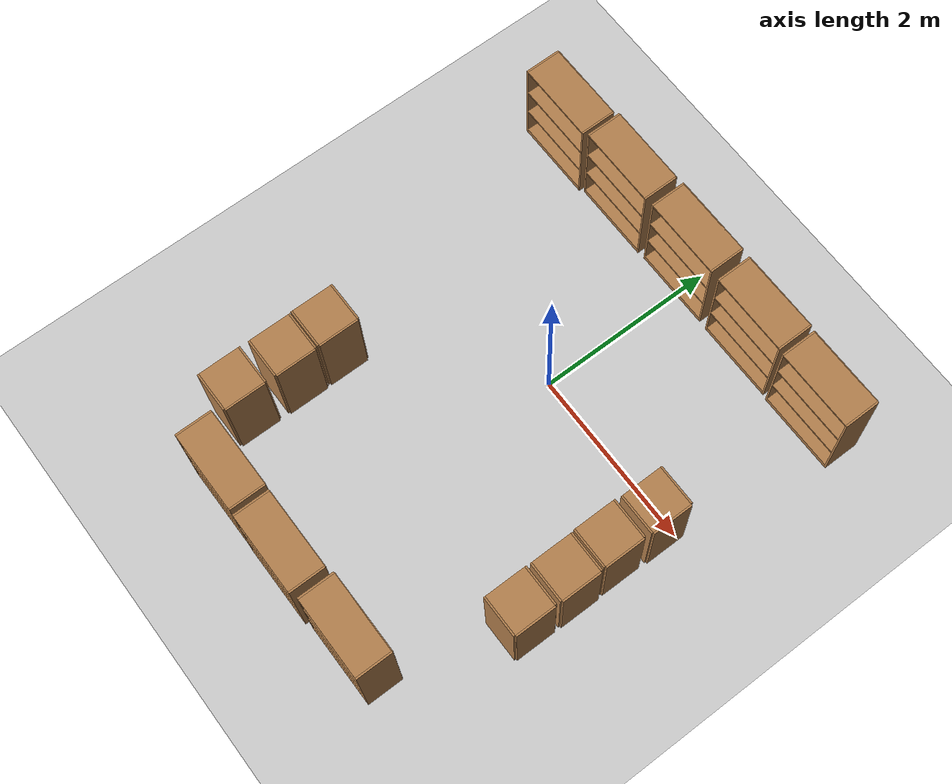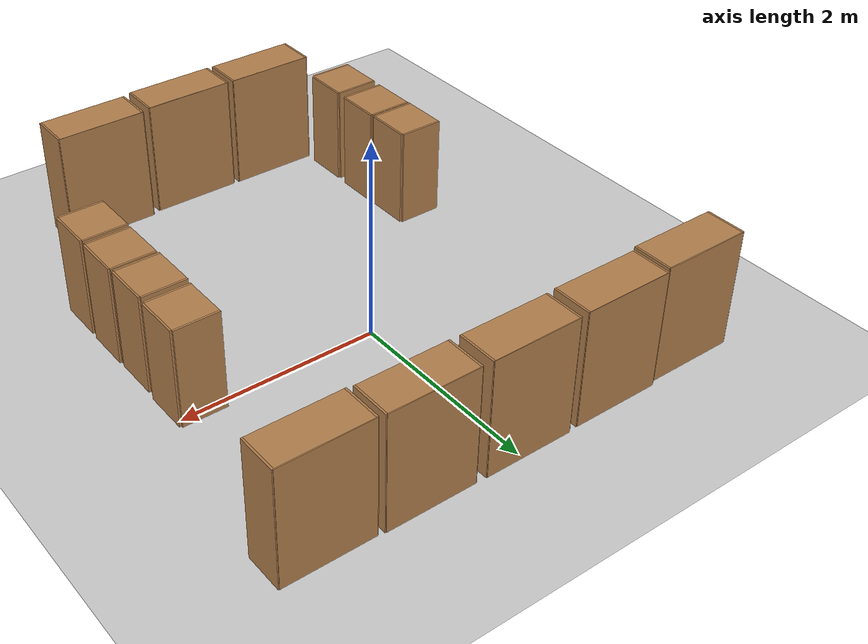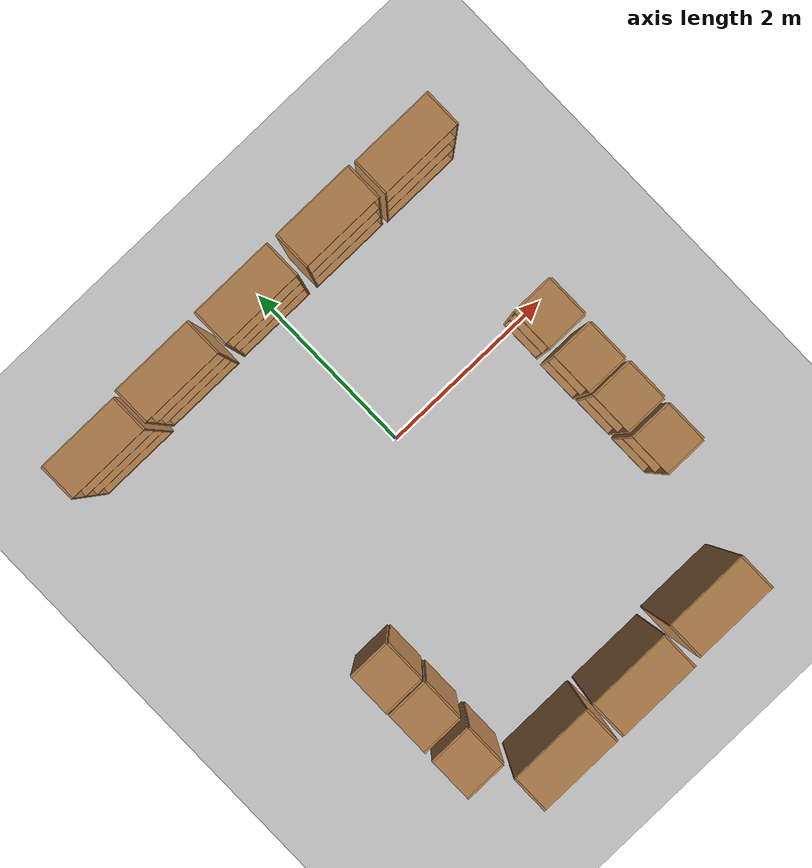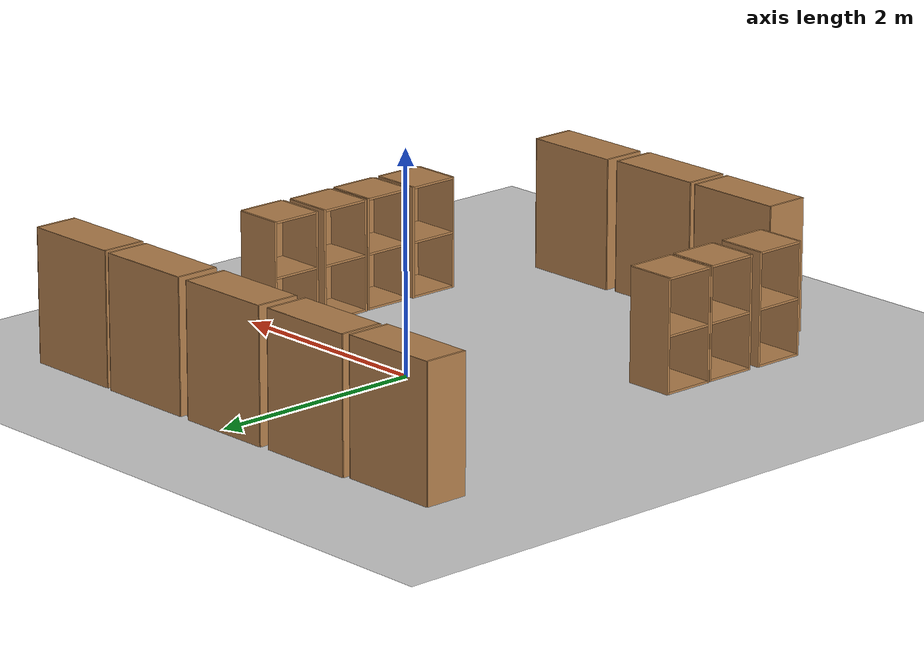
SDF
<sdf version="1.7">
 <world name="default">
  <light name="sun" type="directional">
   <pose>0 0 10 0 -0 0</pose>
   <diffuse>0.8 0.8 0.8 1</diffuse>
   <specular>0.2 0.2 0.2 1</specular>
   <attenuation>
    <range>1000</range>
    <constant>0.9</constant>
    <linear>0.01</linear>
    <quadratic>0.001</quadratic>
   </attenuation>
   <direction>-0.5 0.1 -0.9</direction>
   <spot><inner_angle>0</inner_angle><outer_angle>0</outer_angle><falloff>0</falloff></spot>
  </light>
  <model name="ground_plane">
   <static>1</static>
   <link name="link">
    <collision name="collision">
     <geometry><plane><normal>0 0 1</normal><size>100 100</size></plane></geometry>
     <surface>
      <contact><collide_bitmask>65535</collide_bitmask></contact>
      <friction><ode><mu>100</mu><mu2>50</mu2></ode></friction>
     </surface>
    </collision>
    <visual name="visual">
     <cast_shadows>0</cast_shadows>
     <geometry><plane><normal>0 0 1</normal><size>100 100</size></plane></geometry>
     <material>
      <script><uri>file://media/materials/scripts/gazebo.material</uri><name>Gazebo/Grey</name></script>
     </material>
    </visual>
   </link>
  </model>
  <gravity>0 0 -9.8</gravity>
  <magnetic_field>6e-06 2.3e-05 -4.2e-05</magnetic_field>
  <atmosphere type="adiabatic"/>
  <physics type="ode">
   <max_step_size>0.001</max_step_size>
   <real_time_factor>1</real_time_factor>
   <real_time_update_rate>1000</real_time_update_rate>
  </physics>
  <scene><ambient>0.4 0.4 0.4 1</ambient><background>0.7 0.7 0.7 1</background><shadows>1</shadows></scene>
  <audio><device>default</device></audio>
  <spherical_coordinates>
   <surface_model>EARTH_WGS84</surface_model>
   <latitude_deg>0</latitude_deg>
   <longitude_deg>0</longitude_deg>
   <elevation>0</elevation>
   <heading_deg>0</heading_deg>
  </spherical_coordinates>
  <model name="cabinet">
   <static>1</static>
   <link name="cabinet_bottom_plate">
    <inertial>
     <pose>0 0 -1 0 -0 0</pose>
     <inertia><ixx>2.05</ixx><ixy>0</ixy><ixz>0</ixz><iyy>2.05</iyy><iyz>0</iyz><izz>2.05</izz></inertia>
     <mass>25</mass>
    </inertial>
    <collision name="cabinet_bottom_plate_geom">
     <pose>0 0 0.01 0 -0 0</pose>
     <geometry><box><size>0.45 0.45 0.02</size></box></geometry>
    </collision>
    <visual name="cabinet_bottom_plate_geom_visual">
     <pose>0 0 0.01 0 -0 0</pose>
     <geometry><box><size>0.45 0.45 0.02</size></box></geometry>
     <material>
      <script><uri>file://media/materials/scripts/gazebo.material</uri><name>Gazebo/Wood</name></script>
     </material>
    </visual>
    <collision name="cabinet_bottom_plate_geom_cabinet_back_plate">
     <pose>0.235 0 0.51 0 -0 0</pose>
     <geometry><box><size>0.02 0.45 1.02</size></box></geometry>
    </collision>
    <visual name="cabinet_bottom_plate_geom_cabinet_back_plate_visual">
     <pose>0.235 0 0.51 0 -0 0</pose>
     <geometry><box><size>0.02 0.45 1.02</size></box></geometry>
     <material>
      <script><uri>file://media/materials/scripts/gazebo.material</uri><name>Gazebo/Wood</name></script>
     </material>
    </visual>
    <collision name="cabinet_bottom_plate_geom_cabinet_left_plate">
     <pose>0 0.235 0.51 0 -0 0</pose>
     <geometry><box><size>0.45 0.02 1.02</size></box></geometry>
    </collision>
    <visual name="cabinet_bottom_plate_geom_cabinet_left_plate_visual">
     <pose>0 0.235 0.51 0 -0 0</pose>
     <geometry><box><size>0.45 0.02 1.02</size></box></geometry>
     <material>
      <script><uri>file://media/materials/scripts/gazebo.material</uri><name>Gazebo/Wood</name></script>
     </material>
    </visual>
    <collision name="cabinet_bottom_plate_geom_cabinet_middle_plate">
     <pose>0 0 0.51 0 -0 0</pose>
     <geometry><box><size>0.45 0.45 0.02</size></box></geometry>
    </collision>
    <visual name="cabinet_bottom_plate_geom_cabinet_middle_plate_visual">
     <pose>0 0 0.51 0 -0 0</pose>
     <geometry><box><size>0.45 0.45 0.02</size></box></geometry>
     <material>
      <script><uri>file://media/materials/scripts/gazebo.material</uri><name>Gazebo/Wood</name></script>
     </material>
    </visual>
    <collision name="cabinet_bottom_plate_geom_cabinet_right_plate">
     <pose>0 -0.235 0.51 0 -0 0</pose>
     <geometry><box><size>0.45 0.02 1.02</size></box></geometry>
    </collision>
    <visual name="cabinet_bottom_plate_geom_cabinet_right_plate_visual">
     <pose>0 -0.235 0.51 0 -0 0</pose>
     <geometry><box><size>0.45 0.02 1.02</size></box></geometry>
     <material>
      <script><uri>file://media/materials/scripts/gazebo.material</uri><name>Gazebo/Wood</name></script>
     </material>
    </visual>
    <collision name="cabinet_bottom_plate_geom_cabinet_top_plate">
     <pose>0 0 1.01 0 -0 0</pose>
     <geometry><box><size>0.45 0.45 0.02</size></box></geometry>
    </collision>
    <visual name="cabinet_bottom_plate_geom_cabinet_top_plate_visual">
     <pose>0 0 1.01 0 -0 0</pose>
     <geometry><box><size>0.45 0.45 0.02</size></box></geometry>
     <material>
      <script><uri>file://media/materials/scripts/gazebo.material</uri><name>Gazebo/Wood</name></script>
     </material>
    </visual>
   </link>
   <pose>1.79653 -1.74057 0 0 -0 0</pose>
  </model>
  <model name="cabinet_0">
   <static>1</static>
   <link name="cabinet_bottom_plate">
    <inertial>
     <pose>0 0 -1 0 -0 0</pose>
     <inertia><ixx>2.05</ixx><ixy>0</ixy><ixz>0</ixz><iyy>2.05</iyy><iyz>0</iyz><izz>2.05</izz></inertia>
     <mass>25</mass>
    </inertial>
    <collision name="cabinet_bottom_plate_geom">
     <pose>0 0 0.01 0 -0 0</pose>
     <geometry><box><size>0.45 0.45 0.02</size></box></geometry>
    </collision>
    <visual name="cabinet_bottom_plate_geom_visual">
     <pose>0 0 0.01 0 -0 0</pose>
     <geometry><box><size>0.45 0.45 0.02</size></box></geometry>
     <material>
      <script><uri>file://media/materials/scripts/gazebo.material</uri><name>Gazebo/Wood</name></script>
     </material>
    </visual>
    <collision name="cabinet_bottom_plate_geom_cabinet_back_plate">
     <pose>0.235 0 0.51 0 -0 0</pose>
     <geometry><box><size>0.02 0.45 1.02</size></box></geometry>
    </collision>
    <visual name="cabinet_bottom_plate_geom_cabinet_back_plate_visual">
     <pose>0.235 0 0.51 0 -0 0</pose>
     <geometry><box><size>0.02 0.45 1.02</size></box></geometry>
     <material>
      <script><uri>file://media/materials/scripts/gazebo.material</uri><name>Gazebo/Wood</name></script>
     </material>
    </visual>
    <collision name="cabinet_bottom_plate_geom_cabinet_left_plate">
     <pose>0 0.235 0.51 0 -0 0</pose>
     <geometry><box><size>0.45 0.02 1.02</size></box></geometry>
    </collision>
    <visual name="cabinet_bottom_plate_geom_cabinet_left_plate_visual">
     <pose>0 0.235 0.51 0 -0 0</pose>
     <geometry><box><size>0.45 0.02 1.02</size></box></geometry>
     <material>
      <script><uri>file://media/materials/scripts/gazebo.material</uri><name>Gazebo/Wood</name></script>
     </material>
    </visual>
    <collision name="cabinet_bottom_plate_geom_cabinet_middle_plate">
     <pose>0 0 0.51 0 -0 0</pose>
     <geometry><box><size>0.45 0.45 0.02</size></box></geometry>
    </collision>
    <visual name="cabinet_bottom_plate_geom_cabinet_middle_plate_visual">
     <pose>0 0 0.51 0 -0 0</pose>
     <geometry><box><size>0.45 0.45 0.02</size></box></geometry>
     <material>
      <script><uri>file://media/materials/scripts/gazebo.material</uri><name>Gazebo/Wood</name></script>
     </material>
    </visual>
    <collision name="cabinet_bottom_plate_geom_cabinet_right_plate">
     <pose>0 -0.235 0.51 0 -0 0</pose>
     <geometry><box><size>0.45 0.02 1.02</size></box></geometry>
    </collision>
    <visual name="cabinet_bottom_plate_geom_cabinet_right_plate_visual">
     <pose>0 -0.235 0.51 0 -0 0</pose>
     <geometry><box><size>0.45 0.02 1.02</size></box></geometry>
     <material>
      <script><uri>file://media/materials/scripts/gazebo.material</uri><name>Gazebo/Wood</name></script>
     </material>
    </visual>
    <collision name="cabinet_bottom_plate_geom_cabinet_top_plate">
     <pose>0 0 1.01 0 -0 0</pose>
     <geometry><box><size>0.45 0.45 0.02</size></box></geometry>
    </collision>
    <visual name="cabinet_bottom_plate_geom_cabinet_top_plate_visual">
     <pose>0 0 1.01 0 -0 0</pose>
     <geometry><box><size>0.45 0.45 0.02</size></box></geometry>
     <material>
      <script><uri>file://media/materials/scripts/gazebo.material</uri><name>Gazebo/Wood</name></script>
     </material>
    </visual>
   </link>
   <pose>-1.58608 -1.53469 0 0 -0 0</pose>
  </model>
  <model name="bookshelf">
   <static>1</static>
   <link name="link">
    <inertial><mass>1</mass></inertial>
    <collision name="back">
     <pose>0 0.005 0.6 0 -0 0</pose>
     <geometry><box><size>0.9 0.01 1.2</size></box></geometry>
    </collision>
    <visual name="visual1">
     <pose>0 0.005 0.6 0 -0 0</pose>
     <geometry><box><size>0.9 0.01 1.2</size></box></geometry>
     <material>
      <script><uri>file://media/materials/scripts/gazebo.material</uri><name>Gazebo/Wood</name></script>
     </material>
    </visual>
    <collision name="left_side">
     <pose>0.45 -0.195 0.6 0 -0 0</pose>
     <geometry><box><size>0.02 0.4 1.2</size></box></geometry>
    </collision>
    <visual name="visual2">
     <pose>0.45 -0.195 0.6 0 -0 0</pose>
     <geometry><box><size>0.02 0.4 1.2</size></box></geometry>
     <material>
      <script><uri>file://media/materials/scripts/gazebo.material</uri><name>Gazebo/Wood</name></script>
     </material>
    </visual>
    <collision name="right_side">
     <pose>-0.45 -0.195 0.6 0 -0 0</pose>
     <geometry><box><size>0.02 0.4 1.2</size></box></geometry>
    </collision>
    <visual name="visual3">
     <pose>-0.45 -0.195 0.6 0 -0 0</pose>
     <geometry><box><size>0.02 0.4 1.2</size></box></geometry>
     <material>
      <script><uri>file://media/materials/scripts/gazebo.material</uri><name>Gazebo/Wood</name></script>
     </material>
    </visual>
    <collision name="bottom">
     <pose>0 -0.195 0.03 0 -0 0</pose>
     <geometry><box><size>0.88 0.4 0.06</size></box></geometry>
    </collision>
    <visual name="visual4">
     <pose>0 -0.195 0.03 0 -0 0</pose>
     <geometry><box><size>0.88 0.4 0.06</size></box></geometry>
     <material>
      <script><uri>file://media/materials/scripts/gazebo.material</uri><name>Gazebo/Wood</name></script>
     </material>
    </visual>
    <collision name="top">
     <pose>0 -0.195 1.19 0 -0 0</pose>
     <geometry><box><size>0.88 0.4 0.02</size></box></geometry>
    </collision>
    <visual name="visual5">
     <pose>0 -0.195 1.19 0 -0 0</pose>
     <geometry><box><size>0.88 0.4 0.02</size></box></geometry>
     <material>
      <script><uri>file://media/materials/scripts/gazebo.material</uri><name>Gazebo/Wood</name></script>
     </material>
    </visual>
    <collision name="low_shelf">
     <pose>0 -0.195 0.43 0 -0 0</pose>
     <geometry><box><size>0.88 0.4 0.02</size></box></geometry>
    </collision>
    <visual name="visual6">
     <pose>0 -0.195 0.43 0 -0 0</pose>
     <geometry><box><size>0.88 0.4 0.02</size></box></geometry>
     <material>
      <script><uri>file://media/materials/scripts/gazebo.material</uri><name>Gazebo/Wood</name></script>
     </material>
    </visual>
    <collision name="high_shelf">
     <pose>0 -0.195 0.8 0 -0 0</pose>
     <geometry><box><size>0.88 0.4 0.02</size></box></geometry>
    </collision>
    <visual name="visual7">
     <pose>0 -0.195 0.8 0 -0 0</pose>
     <geometry><box><size>0.88 0.4 0.02</size></box></geometry>
     <material>
      <script><uri>file://media/materials/scripts/gazebo.material</uri><name>Gazebo/Wood</name></script>
     </material>
    </visual>
   </link>
   <pose>-0.070143 2.05105 0 0 -0 0</pose>
  </model>
  <model name="bookshelf_0">
   <static>1</static>
   <link name="link">
    <inertial><mass>1</mass></inertial>
    <collision name="back">
     <pose>0 0.005 0.6 0 -0 0</pose>
     <geometry><box><size>0.9 0.01 1.2</size></box></geometry>
    </collision>
    <visual name="visual1">
     <pose>0 0.005 0.6 0 -0 0</pose>
     <geometry><box><size>0.9 0.01 1.2</size></box></geometry>
     <material>
      <script><uri>file://media/materials/scripts/gazebo.material</uri><name>Gazebo/Wood</name></script>
     </material>
    </visual>
    <collision name="left_side">
     <pose>0.45 -0.195 0.6 0 -0 0</pose>
     <geometry><box><size>0.02 0.4 1.2</size></box></geometry>
    </collision>
    <visual name="visual2">
     <pose>0.45 -0.195 0.6 0 -0 0</pose>
     <geometry><box><size>0.02 0.4 1.2</size></box></geometry>
     <material>
      <script><uri>file://media/materials/scripts/gazebo.material</uri><name>Gazebo/Wood</name></script>
     </material>
    </visual>
    <collision name="right_side">
     <pose>-0.45 -0.195 0.6 0 -0 0</pose>
     <geometry><box><size>0.02 0.4 1.2</size></box></geometry>
    </collision>
    <visual name="visual3">
     <pose>-0.45 -0.195 0.6 0 -0 0</pose>
     <geometry><box><size>0.02 0.4 1.2</size></box></geometry>
     <material>
      <script><uri>file://media/materials/scripts/gazebo.material</uri><name>Gazebo/Wood</name></script>
     </material>
    </visual>
    <collision name="bottom">
     <pose>0 -0.195 0.03 0 -0 0</pose>
     <geometry><box><size>0.88 0.4 0.06</size></box></geometry>
    </collision>
    <visual name="visual4">
     <pose>0 -0.195 0.03 0 -0 0</pose>
     <geometry><box><size>0.88 0.4 0.06</size></box></geometry>
     <material>
      <script><uri>file://media/materials/scripts/gazebo.material</uri><name>Gazebo/Wood</name></script>
     </material>
    </visual>
    <collision name="top">
     <pose>0 -0.195 1.19 0 -0 0</pose>
     <geometry><box><size>0.88 0.4 0.02</size></box></geometry>
    </collision>
    <visual name="visual5">
     <pose>0 -0.195 1.19 0 -0 0</pose>
     <geometry><box><size>0.88 0.4 0.02</size></box></geometry>
     <material>
      <script><uri>file://media/materials/scripts/gazebo.material</uri><name>Gazebo/Wood</name></script>
     </material>
    </visual>
    <collision name="low_shelf">
     <pose>0 -0.195 0.43 0 -0 0</pose>
     <geometry><box><size>0.88 0.4 0.02</size></box></geometry>
    </collision>
    <visual name="visual6">
     <pose>0 -0.195 0.43 0 -0 0</pose>
     <geometry><box><size>0.88 0.4 0.02</size></box></geometry>
     <material>
      <script><uri>file://media/materials/scripts/gazebo.material</uri><name>Gazebo/Wood</name></script>
     </material>
    </visual>
    <collision name="high_shelf">
     <pose>0 -0.195 0.8 0 -0 0</pose>
     <geometry><box><size>0.88 0.4 0.02</size></box></geometry>
    </collision>
    <visual name="visual7">
     <pose>0 -0.195 0.8 0 -0 0</pose>
     <geometry><box><size>0.88 0.4 0.02</size></box></geometry>
     <material>
      <script><uri>file://media/materials/scripts/gazebo.material</uri><name>Gazebo/Wood</name></script>
     </material>
    </visual>
   </link>
   <pose>0.942437 2.04598 0 0 -0 0</pose>
  </model>
  <model name="bookshelf_1">
   <static>1</static>
   <link name="link">
    <inertial><mass>1</mass></inertial>
    <collision name="back">
     <pose>0 0.005 0.6 0 -0 0</pose>
     <geometry><box><size>0.9 0.01 1.2</size></box></geometry>
    </collision>
    <visual name="visual1">
     <pose>0 0.005 0.6 0 -0 0</pose>
     <geometry><box><size>0.9 0.01 1.2</size></box></geometry>
     <material>
      <script><uri>file://media/materials/scripts/gazebo.material</uri><name>Gazebo/Wood</name></script>
     </material>
    </visual>
    <collision name="left_side">
     <pose>0.45 -0.195 0.6 0 -0 0</pose>
     <geometry><box><size>0.02 0.4 1.2</size></box></geometry>
    </collision>
    <visual name="visual2">
     <pose>0.45 -0.195 0.6 0 -0 0</pose>
     <geometry><box><size>0.02 0.4 1.2</size></box></geometry>
     <material>
      <script><uri>file://media/materials/scripts/gazebo.material</uri><name>Gazebo/Wood</name></script>
     </material>
    </visual>
    <collision name="right_side">
     <pose>-0.45 -0.195 0.6 0 -0 0</pose>
     <geometry><box><size>0.02 0.4 1.2</size></box></geometry>
    </collision>
    <visual name="visual3">
     <pose>-0.45 -0.195 0.6 0 -0 0</pose>
     <geometry><box><size>0.02 0.4 1.2</size></box></geometry>
     <material>
      <script><uri>file://media/materials/scripts/gazebo.material</uri><name>Gazebo/Wood</name></script>
     </material>
    </visual>
    <collision name="bottom">
     <pose>0 -0.195 0.03 0 -0 0</pose>
     <geometry><box><size>0.88 0.4 0.06</size></box></geometry>
    </collision>
    <visual name="visual4">
     <pose>0 -0.195 0.03 0 -0 0</pose>
     <geometry><box><size>0.88 0.4 0.06</size></box></geometry>
     <material>
      <script><uri>file://media/materials/scripts/gazebo.material</uri><name>Gazebo/Wood</name></script>
     </material>
    </visual>
    <collision name="top">
     <pose>0 -0.195 1.19 0 -0 0</pose>
     <geometry><box><size>0.88 0.4 0.02</size></box></geometry>
    </collision>
    <visual name="visual5">
     <pose>0 -0.195 1.19 0 -0 0</pose>
     <geometry><box><size>0.88 0.4 0.02</size></box></geometry>
     <material>
      <script><uri>file://media/materials/scripts/gazebo.material</uri><name>Gazebo/Wood</name></script>
     </material>
    </visual>
    <collision name="low_shelf">
     <pose>0 -0.195 0.43 0 -0 0</pose>
     <geometry><box><size>0.88 0.4 0.02</size></box></geometry>
    </collision>
    <visual name="visual6">
     <pose>0 -0.195 0.43 0 -0 0</pose>
     <geometry><box><size>0.88 0.4 0.02</size></box></geometry>
     <material>
      <script><uri>file://media/materials/scripts/gazebo.material</uri><name>Gazebo/Wood</name></script>
     </material>
    </visual>
    <collision name="high_shelf">
     <pose>0 -0.195 0.8 0 -0 0</pose>
     <geometry><box><size>0.88 0.4 0.02</size></box></geometry>
    </collision>
    <visual name="visual7">
     <pose>0 -0.195 0.8 0 -0 0</pose>
     <geometry><box><size>0.88 0.4 0.02</size></box></geometry>
     <material>
      <script><uri>file://media/materials/scripts/gazebo.material</uri><name>Gazebo/Wood</name></script>
     </material>
    </visual>
   </link>
   <pose>-1.06941 2.03933 0 0 -0 0</pose>
  </model>
  <model name="bookshelf_2">
   <static>1</static>
   <link name="link">
    <inertial><mass>1</mass></inertial>
    <collision name="back">
     <pose>0 0.005 0.6 0 -0 0</pose>
     <geometry><box><size>0.9 0.01 1.2</size></box></geometry>
    </collision>
    <visual name="visual1">
     <pose>0 0.005 0.6 0 -0 0</pose>
     <geometry><box><size>0.9 0.01 1.2</size></box></geometry>
     <material>
      <script><uri>file://media/materials/scripts/gazebo.material</uri><name>Gazebo/Wood</name></script>
     </material>
    </visual>
    <collision name="left_side">
     <pose>0.45 -0.195 0.6 0 -0 0</pose>
     <geometry><box><size>0.02 0.4 1.2</size></box></geometry>
    </collision>
    <visual name="visual2">
     <pose>0.45 -0.195 0.6 0 -0 0</pose>
     <geometry><box><size>0.02 0.4 1.2</size></box></geometry>
     <material>
      <script><uri>file://media/materials/scripts/gazebo.material</uri><name>Gazebo/Wood</name></script>
     </material>
    </visual>
    <collision name="right_side">
     <pose>-0.45 -0.195 0.6 0 -0 0</pose>
     <geometry><box><size>0.02 0.4 1.2</size></box></geometry>
    </collision>
    <visual name="visual3">
     <pose>-0.45 -0.195 0.6 0 -0 0</pose>
     <geometry><box><size>0.02 0.4 1.2</size></box></geometry>
     <material>
      <script><uri>file://media/materials/scripts/gazebo.material</uri><name>Gazebo/Wood</name></script>
     </material>
    </visual>
    <collision name="bottom">
     <pose>0 -0.195 0.03 0 -0 0</pose>
     <geometry><box><size>0.88 0.4 0.06</size></box></geometry>
    </collision>
    <visual name="visual4">
     <pose>0 -0.195 0.03 0 -0 0</pose>
     <geometry><box><size>0.88 0.4 0.06</size></box></geometry>
     <material>
      <script><uri>file://media/materials/scripts/gazebo.material</uri><name>Gazebo/Wood</name></script>
     </material>
    </visual>
    <collision name="top">
     <pose>0 -0.195 1.19 0 -0 0</pose>
     <geometry><box><size>0.88 0.4 0.02</size></box></geometry>
    </collision>
    <visual name="visual5">
     <pose>0 -0.195 1.19 0 -0 0</pose>
     <geometry><box><size>0.88 0.4 0.02</size></box></geometry>
     <material>
      <script><uri>file://media/materials/scripts/gazebo.material</uri><name>Gazebo/Wood</name></script>
     </material>
    </visual>
    <collision name="low_shelf">
     <pose>0 -0.195 0.43 0 -0 0</pose>
     <geometry><box><size>0.88 0.4 0.02</size></box></geometry>
    </collision>
    <visual name="visual6">
     <pose>0 -0.195 0.43 0 -0 0</pose>
     <geometry><box><size>0.88 0.4 0.02</size></box></geometry>
     <material>
      <script><uri>file://media/materials/scripts/gazebo.material</uri><name>Gazebo/Wood</name></script>
     </material>
    </visual>
    <collision name="high_shelf">
     <pose>0 -0.195 0.8 0 -0 0</pose>
     <geometry><box><size>0.88 0.4 0.02</size></box></geometry>
    </collision>
    <visual name="visual7">
     <pose>0 -0.195 0.8 0 -0 0</pose>
     <geometry><box><size>0.88 0.4 0.02</size></box></geometry>
     <material>
      <script><uri>file://media/materials/scripts/gazebo.material</uri><name>Gazebo/Wood</name></script>
     </material>
    </visual>
   </link>
   <pose>-2.02264 2.00355 0 0 -0 0</pose>
  </model>
  <model name="cabinet_1">
   <static>1</static>
   <link name="cabinet_bottom_plate">
    <inertial>
     <pose>0 0 -1 0 -0 0</pose>
     <inertia><ixx>2.05</ixx><ixy>0</ixy><ixz>0</ixz><iyy>2.05</iyy><iyz>0</iyz><izz>2.05</izz></inertia>
     <mass>25</mass>
    </inertial>
    <collision name="cabinet_bottom_plate_geom">
     <pose>0 0 0.01 0 -0 0</pose>
     <geometry><box><size>0.45 0.45 0.02</size></box></geometry>
    </collision>
    <visual name="cabinet_bottom_plate_geom_visual">
     <pose>0 0 0.01 0 -0 0</pose>
     <geometry><box><size>0.45 0.45 0.02</size></box></geometry>
     <material>
      <script><uri>file://media/materials/scripts/gazebo.material</uri><name>Gazebo/Wood</name></script>
     </material>
    </visual>
    <collision name="cabinet_bottom_plate_geom_cabinet_back_plate">
     <pose>0.235 0 0.51 0 -0 0</pose>
     <geometry><box><size>0.02 0.45 1.02</size></box></geometry>
    </collision>
    <visual name="cabinet_bottom_plate_geom_cabinet_back_plate_visual">
     <pose>0.235 0 0.51 0 -0 0</pose>
     <geometry><box><size>0.02 0.45 1.02</size></box></geometry>
     <material>
      <script><uri>file://media/materials/scripts/gazebo.material</uri><name>Gazebo/Wood</name></script>
     </material>
    </visual>
    <collision name="cabinet_bottom_plate_geom_cabinet_left_plate">
     <pose>0 0.235 0.51 0 -0 0</pose>
     <geometry><box><size>0.45 0.02 1.02</size></box></geometry>
    </collision>
    <visual name="cabinet_bottom_plate_geom_cabinet_left_plate_visual">
     <pose>0 0.235 0.51 0 -0 0</pose>
     <geometry><box><size>0.45 0.02 1.02</size></box></geometry>
     <material>
      <script><uri>file://media/materials/scripts/gazebo.material</uri><name>Gazebo/Wood</name></script>
     </material>
    </visual>
    <collision name="cabinet_bottom_plate_geom_cabinet_middle_plate">
     <pose>0 0 0.51 0 -0 0</pose>
     <geometry><box><size>0.45 0.45 0.02</size></box></geometry>
    </collision>
    <visual name="cabinet_bottom_plate_geom_cabinet_middle_plate_visual">
     <pose>0 0 0.51 0 -0 0</pose>
     <geometry><box><size>0.45 0.45 0.02</size></box></geometry>
     <material>
      <script><uri>file://media/materials/scripts/gazebo.material</uri><name>Gazebo/Wood</name></script>
     </material>
    </visual>
    <collision name="cabinet_bottom_plate_geom_cabinet_right_plate">
     <pose>0 -0.235 0.51 0 -0 0</pose>
     <geometry><box><size>0.45 0.02 1.02</size></box></geometry>
    </collision>
    <visual name="cabinet_bottom_plate_geom_cabinet_right_plate_visual">
     <pose>0 -0.235 0.51 0 -0 0</pose>
     <geometry><box><size>0.45 0.02 1.02</size></box></geometry>
     <material>
      <script><uri>file://media/materials/scripts/gazebo.material</uri><name>Gazebo/Wood</name></script>
     </material>
    </visual>
    <collision name="cabinet_bottom_plate_geom_cabinet_top_plate">
     <pose>0 0 1.01 0 -0 0</pose>
     <geometry><box><size>0.45 0.45 0.02</size></box></geometry>
    </collision>
    <visual name="cabinet_bottom_plate_geom_cabinet_top_plate_visual">
     <pose>0 0 1.01 0 -0 0</pose>
     <geometry><box><size>0.45 0.45 0.02</size></box></geometry>
     <material>
      <script><uri>file://media/materials/scripts/gazebo.material</uri><name>Gazebo/Wood</name></script>
     </material>
    </visual>
   </link>
   <pose>1.80158 -1.21497 0 0 -0 0</pose>
  </model>
  <model name="cabinet_2">
   <static>1</static>
   <link name="cabinet_bottom_plate">
    <inertial>
     <pose>0 0 -1 0 -0 0</pose>
     <inertia><ixx>2.05</ixx><ixy>0</ixy><ixz>0</ixz><iyy>2.05</iyy><iyz>0</iyz><izz>2.05</izz></inertia>
     <mass>25</mass>
    </inertial>
    <collision name="cabinet_bottom_plate_geom">
     <pose>0 0 0.01 0 -0 0</pose>
     <geometry><box><size>0.45 0.45 0.02</size></box></geometry>
    </collision>
    <visual name="cabinet_bottom_plate_geom_visual">
     <pose>0 0 0.01 0 -0 0</pose>
     <geometry><box><size>0.45 0.45 0.02</size></box></geometry>
     <material>
      <script><uri>file://media/materials/scripts/gazebo.material</uri><name>Gazebo/Wood</name></script>
     </material>
    </visual>
    <collision name="cabinet_bottom_plate_geom_cabinet_back_plate">
     <pose>0.235 0 0.51 0 -0 0</pose>
     <geometry><box><size>0.02 0.45 1.02</size></box></geometry>
    </collision>
    <visual name="cabinet_bottom_plate_geom_cabinet_back_plate_visual">
     <pose>0.235 0 0.51 0 -0 0</pose>
     <geometry><box><size>0.02 0.45 1.02</size></box></geometry>
     <material>
      <script><uri>file://media/materials/scripts/gazebo.material</uri><name>Gazebo/Wood</name></script>
     </material>
    </visual>
    <collision name="cabinet_bottom_plate_geom_cabinet_left_plate">
     <pose>0 0.235 0.51 0 -0 0</pose>
     <geometry><box><size>0.45 0.02 1.02</size></box></geometry>
    </collision>
    <visual name="cabinet_bottom_plate_geom_cabinet_left_plate_visual">
     <pose>0 0.235 0.51 0 -0 0</pose>
     <geometry><box><size>0.45 0.02 1.02</size></box></geometry>
     <material>
      <script><uri>file://media/materials/scripts/gazebo.material</uri><name>Gazebo/Wood</name></script>
     </material>
    </visual>
    <collision name="cabinet_bottom_plate_geom_cabinet_middle_plate">
     <pose>0 0 0.51 0 -0 0</pose>
     <geometry><box><size>0.45 0.45 0.02</size></box></geometry>
    </collision>
    <visual name="cabinet_bottom_plate_geom_cabinet_middle_plate_visual">
     <pose>0 0 0.51 0 -0 0</pose>
     <geometry><box><size>0.45 0.45 0.02</size></box></geometry>
     <material>
      <script><uri>file://media/materials/scripts/gazebo.material</uri><name>Gazebo/Wood</name></script>
     </material>
    </visual>
    <collision name="cabinet_bottom_plate_geom_cabinet_right_plate">
     <pose>0 -0.235 0.51 0 -0 0</pose>
     <geometry><box><size>0.45 0.02 1.02</size></box></geometry>
    </collision>
    <visual name="cabinet_bottom_plate_geom_cabinet_right_plate_visual">
     <pose>0 -0.235 0.51 0 -0 0</pose>
     <geometry><box><size>0.45 0.02 1.02</size></box></geometry>
     <material>
      <script><uri>file://media/materials/scripts/gazebo.material</uri><name>Gazebo/Wood</name></script>
     </material>
    </visual>
    <collision name="cabinet_bottom_plate_geom_cabinet_top_plate">
     <pose>0 0 1.01 0 -0 0</pose>
     <geometry><box><size>0.45 0.45 0.02</size></box></geometry>
    </collision>
    <visual name="cabinet_bottom_plate_geom_cabinet_top_plate_visual">
     <pose>0 0 1.01 0 -0 0</pose>
     <geometry><box><size>0.45 0.45 0.02</size></box></geometry>
     <material>
      <script><uri>file://media/materials/scripts/gazebo.material</uri><name>Gazebo/Wood</name></script>
     </material>
    </visual>
   </link>
   <pose>1.79263 -0.707064 0 0 -0 0</pose>
  </model>
  <model name="cabinet_3">
   <static>1</static>
   <link name="cabinet_bottom_plate">
    <inertial>
     <pose>0 0 -1 0 -0 0</pose>
     <inertia><ixx>2.05</ixx><ixy>0</ixy><ixz>0</ixz><iyy>2.05</iyy><iyz>0</iyz><izz>2.05</izz></inertia>
     <mass>25</mass>
    </inertial>
    <collision name="cabinet_bottom_plate_geom">
     <pose>0 0 0.01 0 -0 0</pose>
     <geometry><box><size>0.45 0.45 0.02</size></box></geometry>
    </collision>
    <visual name="cabinet_bottom_plate_geom_visual">
     <pose>0 0 0.01 0 -0 0</pose>
     <geometry><box><size>0.45 0.45 0.02</size></box></geometry>
     <material>
      <script><uri>file://media/materials/scripts/gazebo.material</uri><name>Gazebo/Wood</name></script>
     </material>
    </visual>
    <collision name="cabinet_bottom_plate_geom_cabinet_back_plate">
     <pose>0.235 0 0.51 0 -0 0</pose>
     <geometry><box><size>0.02 0.45 1.02</size></box></geometry>
    </collision>
    <visual name="cabinet_bottom_plate_geom_cabinet_back_plate_visual">
     <pose>0.235 0 0.51 0 -0 0</pose>
     <geometry><box><size>0.02 0.45 1.02</size></box></geometry>
     <material>
      <script><uri>file://media/materials/scripts/gazebo.material</uri><name>Gazebo/Wood</name></script>
     </material>
    </visual>
    <collision name="cabinet_bottom_plate_geom_cabinet_left_plate">
     <pose>0 0.235 0.51 0 -0 0</pose>
     <geometry><box><size>0.45 0.02 1.02</size></box></geometry>
    </collision>
    <visual name="cabinet_bottom_plate_geom_cabinet_left_plate_visual">
     <pose>0 0.235 0.51 0 -0 0</pose>
     <geometry><box><size>0.45 0.02 1.02</size></box></geometry>
     <material>
      <script><uri>file://media/materials/scripts/gazebo.material</uri><name>Gazebo/Wood</name></script>
     </material>
    </visual>
    <collision name="cabinet_bottom_plate_geom_cabinet_middle_plate">
     <pose>0 0 0.51 0 -0 0</pose>
     <geometry><box><size>0.45 0.45 0.02</size></box></geometry>
    </collision>
    <visual name="cabinet_bottom_plate_geom_cabinet_middle_plate_visual">
     <pose>0 0 0.51 0 -0 0</pose>
     <geometry><box><size>0.45 0.45 0.02</size></box></geometry>
     <material>
      <script><uri>file://media/materials/scripts/gazebo.material</uri><name>Gazebo/Wood</name></script>
     </material>
    </visual>
    <collision name="cabinet_bottom_plate_geom_cabinet_right_plate">
     <pose>0 -0.235 0.51 0 -0 0</pose>
     <geometry><box><size>0.45 0.02 1.02</size></box></geometry>
    </collision>
    <visual name="cabinet_bottom_plate_geom_cabinet_right_plate_visual">
     <pose>0 -0.235 0.51 0 -0 0</pose>
     <geometry><box><size>0.45 0.02 1.02</size></box></geometry>
     <material>
      <script><uri>file://media/materials/scripts/gazebo.material</uri><name>Gazebo/Wood</name></script>
     </material>
    </visual>
    <collision name="cabinet_bottom_plate_geom_cabinet_top_plate">
     <pose>0 0 1.01 0 -0 0</pose>
     <geometry><box><size>0.45 0.45 0.02</size></box></geometry>
    </collision>
    <visual name="cabinet_bottom_plate_geom_cabinet_top_plate_visual">
     <pose>0 0 1.01 0 -0 0</pose>
     <geometry><box><size>0.45 0.45 0.02</size></box></geometry>
     <material>
      <script><uri>file://media/materials/scripts/gazebo.material</uri><name>Gazebo/Wood</name></script>
     </material>
    </visual>
   </link>
   <pose>1.80797 -0.160654 0 0 -0 0</pose>
  </model>
  <model name="bookshelf_3">
   <static>1</static>
   <link name="link">
    <inertial><mass>1</mass></inertial>
    <collision name="back">
     <pose>0 0.005 0.6 0 -0 0</pose>
     <geometry><box><size>0.9 0.01 1.2</size></box></geometry>
    </collision>
    <visual name="visual1">
     <pose>0 0.005 0.6 0 -0 0</pose>
     <geometry><box><size>0.9 0.01 1.2</size></box></geometry>
     <material>
      <script><uri>file://media/materials/scripts/gazebo.material</uri><name>Gazebo/Wood</name></script>
     </material>
    </visual>
    <collision name="left_side">
     <pose>0.45 -0.195 0.6 0 -0 0</pose>
     <geometry><box><size>0.02 0.4 1.2</size></box></geometry>
    </collision>
    <visual name="visual2">
     <pose>0.45 -0.195 0.6 0 -0 0</pose>
     <geometry><box><size>0.02 0.4 1.2</size></box></geometry>
     <material>
      <script><uri>file://media/materials/scripts/gazebo.material</uri><name>Gazebo/Wood</name></script>
     </material>
    </visual>
    <collision name="right_side">
     <pose>-0.45 -0.195 0.6 0 -0 0</pose>
     <geometry><box><size>0.02 0.4 1.2</size></box></geometry>
    </collision>
    <visual name="visual3">
     <pose>-0.45 -0.195 0.6 0 -0 0</pose>
     <geometry><box><size>0.02 0.4 1.2</size></box></geometry>
     <material>
      <script><uri>file://media/materials/scripts/gazebo.material</uri><name>Gazebo/Wood</name></script>
     </material>
    </visual>
    <collision name="bottom">
     <pose>0 -0.195 0.03 0 -0 0</pose>
     <geometry><box><size>0.88 0.4 0.06</size></box></geometry>
    </collision>
    <visual name="visual4">
     <pose>0 -0.195 0.03 0 -0 0</pose>
     <geometry><box><size>0.88 0.4 0.06</size></box></geometry>
     <material>
      <script><uri>file://media/materials/scripts/gazebo.material</uri><name>Gazebo/Wood</name></script>
     </material>
    </visual>
    <collision name="top">
     <pose>0 -0.195 1.19 0 -0 0</pose>
     <geometry><box><size>0.88 0.4 0.02</size></box></geometry>
    </collision>
    <visual name="visual5">
     <pose>0 -0.195 1.19 0 -0 0</pose>
     <geometry><box><size>0.88 0.4 0.02</size></box></geometry>
     <material>
      <script><uri>file://media/materials/scripts/gazebo.material</uri><name>Gazebo/Wood</name></script>
     </material>
    </visual>
    <collision name="low_shelf">
     <pose>0 -0.195 0.43 0 -0 0</pose>
     <geometry><box><size>0.88 0.4 0.02</size></box></geometry>
    </collision>
    <visual name="visual6">
     <pose>0 -0.195 0.43 0 -0 0</pose>
     <geometry><box><size>0.88 0.4 0.02</size></box></geometry>
     <material>
      <script><uri>file://media/materials/scripts/gazebo.material</uri><name>Gazebo/Wood</name></script>
     </material>
    </visual>
    <collision name="high_shelf">
     <pose>0 -0.195 0.8 0 -0 0</pose>
     <geometry><box><size>0.88 0.4 0.02</size></box></geometry>
    </collision>
    <visual name="visual7">
     <pose>0 -0.195 0.8 0 -0 0</pose>
     <geometry><box><size>0.88 0.4 0.02</size></box></geometry>
     <material>
      <script><uri>file://media/materials/scripts/gazebo.material</uri><name>Gazebo/Wood</name></script>
     </material>
    </visual>
   </link>
   <pose>1.91126 2.03071 0 0 -0 0</pose>
  </model>
  <model name="cabinet_4">
   <static>1</static>
   <link name="cabinet_bottom_plate">
    <inertial>
     <pose>0 0 -1 0 -0 0</pose>
     <inertia><ixx>2.05</ixx><ixy>0</ixy><ixz>0</ixz><iyy>2.05</iyy><iyz>0</iyz><izz>2.05</izz></inertia>
     <mass>25</mass>
    </inertial>
    <collision name="cabinet_bottom_plate_geom">
     <pose>0 0 0.01 0 -0 0</pose>
     <geometry><box><size>0.45 0.45 0.02</size></box></geometry>
    </collision>
    <visual name="cabinet_bottom_plate_geom_visual">
     <pose>0 0 0.01 0 -0 0</pose>
     <geometry><box><size>0.45 0.45 0.02</size></box></geometry>
     <material>
      <script><uri>file://media/materials/scripts/gazebo.material</uri><name>Gazebo/Wood</name></script>
     </material>
    </visual>
    <collision name="cabinet_bottom_plate_geom_cabinet_back_plate">
     <pose>0.235 0 0.51 0 -0 0</pose>
     <geometry><box><size>0.02 0.45 1.02</size></box></geometry>
    </collision>
    <visual name="cabinet_bottom_plate_geom_cabinet_back_plate_visual">
     <pose>0.235 0 0.51 0 -0 0</pose>
     <geometry><box><size>0.02 0.45 1.02</size></box></geometry>
     <material>
      <script><uri>file://media/materials/scripts/gazebo.material</uri><name>Gazebo/Wood</name></script>
     </material>
    </visual>
    <collision name="cabinet_bottom_plate_geom_cabinet_left_plate">
     <pose>0 0.235 0.51 0 -0 0</pose>
     <geometry><box><size>0.45 0.02 1.02</size></box></geometry>
    </collision>
    <visual name="cabinet_bottom_plate_geom_cabinet_left_plate_visual">
     <pose>0 0.235 0.51 0 -0 0</pose>
     <geometry><box><size>0.45 0.02 1.02</size></box></geometry>
     <material>
      <script><uri>file://media/materials/scripts/gazebo.material</uri><name>Gazebo/Wood</name></script>
     </material>
    </visual>
    <collision name="cabinet_bottom_plate_geom_cabinet_middle_plate">
     <pose>0 0 0.51 0 -0 0</pose>
     <geometry><box><size>0.45 0.45 0.02</size></box></geometry>
    </collision>
    <visual name="cabinet_bottom_plate_geom_cabinet_middle_plate_visual">
     <pose>0 0 0.51 0 -0 0</pose>
     <geometry><box><size>0.45 0.45 0.02</size></box></geometry>
     <material>
      <script><uri>file://media/materials/scripts/gazebo.material</uri><name>Gazebo/Wood</name></script>
     </material>
    </visual>
    <collision name="cabinet_bottom_plate_geom_cabinet_right_plate">
     <pose>0 -0.235 0.51 0 -0 0</pose>
     <geometry><box><size>0.45 0.02 1.02</size></box></geometry>
    </collision>
    <visual name="cabinet_bottom_plate_geom_cabinet_right_plate_visual">
     <pose>0 -0.235 0.51 0 -0 0</pose>
     <geometry><box><size>0.45 0.02 1.02</size></box></geometry>
     <material>
      <script><uri>file://media/materials/scripts/gazebo.material</uri><name>Gazebo/Wood</name></script>
     </material>
    </visual>
    <collision name="cabinet_bottom_plate_geom_cabinet_top_plate">
     <pose>0 0 1.01 0 -0 0</pose>
     <geometry><box><size>0.45 0.45 0.02</size></box></geometry>
    </collision>
    <visual name="cabinet_bottom_plate_geom_cabinet_top_plate_visual">
     <pose>0 0 1.01 0 -0 0</pose>
     <geometry><box><size>0.45 0.45 0.02</size></box></geometry>
     <material>
      <script><uri>file://media/materials/scripts/gazebo.material</uri><name>Gazebo/Wood</name></script>
     </material>
    </visual>
   </link>
   <pose>-1.57963 -2.03463 0 0 -0 0</pose>
  </model>
  <model name="cabinet_5">
   <static>1</static>
   <link name="cabinet_bottom_plate">
    <inertial>
     <pose>0 0 -1 0 -0 0</pose>
     <inertia><ixx>2.05</ixx><ixy>0</ixy><ixz>0</ixz><iyy>2.05</iyy><iyz>0</iyz><izz>2.05</izz></inertia>
     <mass>25</mass>
    </inertial>
    <collision name="cabinet_bottom_plate_geom">
     <pose>0 0 0.01 0 -0 0</pose>
     <geometry><box><size>0.45 0.45 0.02</size></box></geometry>
    </collision>
    <visual name="cabinet_bottom_plate_geom_visual">
     <pose>0 0 0.01 0 -0 0</pose>
     <geometry><box><size>0.45 0.45 0.02</size></box></geometry>
     <material>
      <script><uri>file://media/materials/scripts/gazebo.material</uri><name>Gazebo/Wood</name></script>
     </material>
    </visual>
    <collision name="cabinet_bottom_plate_geom_cabinet_back_plate">
     <pose>0.235 0 0.51 0 -0 0</pose>
     <geometry><box><size>0.02 0.45 1.02</size></box></geometry>
    </collision>
    <visual name="cabinet_bottom_plate_geom_cabinet_back_plate_visual">
     <pose>0.235 0 0.51 0 -0 0</pose>
     <geometry><box><size>0.02 0.45 1.02</size></box></geometry>
     <material>
      <script><uri>file://media/materials/scripts/gazebo.material</uri><name>Gazebo/Wood</name></script>
     </material>
    </visual>
    <collision name="cabinet_bottom_plate_geom_cabinet_left_plate">
     <pose>0 0.235 0.51 0 -0 0</pose>
     <geometry><box><size>0.45 0.02 1.02</size></box></geometry>
    </collision>
    <visual name="cabinet_bottom_plate_geom_cabinet_left_plate_visual">
     <pose>0 0.235 0.51 0 -0 0</pose>
     <geometry><box><size>0.45 0.02 1.02</size></box></geometry>
     <material>
      <script><uri>file://media/materials/scripts/gazebo.material</uri><name>Gazebo/Wood</name></script>
     </material>
    </visual>
    <collision name="cabinet_bottom_plate_geom_cabinet_middle_plate">
     <pose>0 0 0.51 0 -0 0</pose>
     <geometry><box><size>0.45 0.45 0.02</size></box></geometry>
    </collision>
    <visual name="cabinet_bottom_plate_geom_cabinet_middle_plate_visual">
     <pose>0 0 0.51 0 -0 0</pose>
     <geometry><box><size>0.45 0.45 0.02</size></box></geometry>
     <material>
      <script><uri>file://media/materials/scripts/gazebo.material</uri><name>Gazebo/Wood</name></script>
     </material>
    </visual>
    <collision name="cabinet_bottom_plate_geom_cabinet_right_plate">
     <pose>0 -0.235 0.51 0 -0 0</pose>
     <geometry><box><size>0.45 0.02 1.02</size></box></geometry>
    </collision>
    <visual name="cabinet_bottom_plate_geom_cabinet_right_plate_visual">
     <pose>0 -0.235 0.51 0 -0 0</pose>
     <geometry><box><size>0.45 0.02 1.02</size></box></geometry>
     <material>
      <script><uri>file://media/materials/scripts/gazebo.material</uri><name>Gazebo/Wood</name></script>
     </material>
    </visual>
    <collision name="cabinet_bottom_plate_geom_cabinet_top_plate">
     <pose>0 0 1.01 0 -0 0</pose>
     <geometry><box><size>0.45 0.45 0.02</size></box></geometry>
    </collision>
    <visual name="cabinet_bottom_plate_geom_cabinet_top_plate_visual">
     <pose>0 0 1.01 0 -0 0</pose>
     <geometry><box><size>0.45 0.45 0.02</size></box></geometry>
     <material>
      <script><uri>file://media/materials/scripts/gazebo.material</uri><name>Gazebo/Wood</name></script>
     </material>
    </visual>
   </link>
   <pose>-1.58558 -2.61251 0 0 -0 0</pose>
  </model>
  <model name="bookshelf_4">
   <static>1</static>
   <link name="link">
    <inertial><mass>1</mass></inertial>
    <collision name="back">
     <pose>0 0.005 0.6 0 -0 0</pose>
     <geometry><box><size>0.9 0.01 1.2</size></box></geometry>
    </collision>
    <visual name="visual1">
     <pose>0 0.005 0.6 0 -0 0</pose>
     <geometry><box><size>0.9 0.01 1.2</size></box></geometry>
     <material>
      <script><uri>file://media/materials/scripts/gazebo.material</uri><name>Gazebo/Wood</name></script>
     </material>
    </visual>
    <collision name="left_side">
     <pose>0.45 -0.195 0.6 0 -0 0</pose>
     <geometry><box><size>0.02 0.4 1.2</size></box></geometry>
    </collision>
    <visual name="visual2">
     <pose>0.45 -0.195 0.6 0 -0 0</pose>
     <geometry><box><size>0.02 0.4 1.2</size></box></geometry>
     <material>
      <script><uri>file://media/materials/scripts/gazebo.material</uri><name>Gazebo/Wood</name></script>
     </material>
    </visual>
    <collision name="right_side">
     <pose>-0.45 -0.195 0.6 0 -0 0</pose>
     <geometry><box><size>0.02 0.4 1.2</size></box></geometry>
    </collision>
    <visual name="visual3">
     <pose>-0.45 -0.195 0.6 0 -0 0</pose>
     <geometry><box><size>0.02 0.4 1.2</size></box></geometry>
     <material>
      <script><uri>file://media/materials/scripts/gazebo.material</uri><name>Gazebo/Wood</name></script>
     </material>
    </visual>
    <collision name="bottom">
     <pose>0 -0.195 0.03 0 -0 0</pose>
     <geometry><box><size>0.88 0.4 0.06</size></box></geometry>
    </collision>
    <visual name="visual4">
     <pose>0 -0.195 0.03 0 -0 0</pose>
     <geometry><box><size>0.88 0.4 0.06</size></box></geometry>
     <material>
      <script><uri>file://media/materials/scripts/gazebo.material</uri><name>Gazebo/Wood</name></script>
     </material>
    </visual>
    <collision name="top">
     <pose>0 -0.195 1.19 0 -0 0</pose>
     <geometry><box><size>0.88 0.4 0.02</size></box></geometry>
    </collision>
    <visual name="visual5">
     <pose>0 -0.195 1.19 0 -0 0</pose>
     <geometry><box><size>0.88 0.4 0.02</size></box></geometry>
     <material>
      <script><uri>file://media/materials/scripts/gazebo.material</uri><name>Gazebo/Wood</name></script>
     </material>
    </visual>
    <collision name="low_shelf">
     <pose>0 -0.195 0.43 0 -0 0</pose>
     <geometry><box><size>0.88 0.4 0.02</size></box></geometry>
    </collision>
    <visual name="visual6">
     <pose>0 -0.195 0.43 0 -0 0</pose>
     <geometry><box><size>0.88 0.4 0.02</size></box></geometry>
     <material>
      <script><uri>file://media/materials/scripts/gazebo.material</uri><name>Gazebo/Wood</name></script>
     </material>
    </visual>
    <collision name="high_shelf">
     <pose>0 -0.195 0.8 0 -0 0</pose>
     <geometry><box><size>0.88 0.4 0.02</size></box></geometry>
    </collision>
    <visual name="visual7">
     <pose>0 -0.195 0.8 0 -0 0</pose>
     <geometry><box><size>0.88 0.4 0.02</size></box></geometry>
     <material>
      <script><uri>file://media/materials/scripts/gazebo.material</uri><name>Gazebo/Wood</name></script>
     </material>
    </visual>
   </link>
   <pose>-0.897748 -2.96378 0 0 -0 0</pose>
  </model>
  <model name="bookshelf_5">
   <static>1</static>
   <link name="link">
    <inertial><mass>1</mass></inertial>
    <collision name="back">
     <pose>0 0.005 0.6 0 -0 0</pose>
     <geometry><box><size>0.9 0.01 1.2</size></box></geometry>
    </collision>
    <visual name="visual1">
     <pose>0 0.005 0.6 0 -0 0</pose>
     <geometry><box><size>0.9 0.01 1.2</size></box></geometry>
     <material>
      <script><uri>file://media/materials/scripts/gazebo.material</uri><name>Gazebo/Wood</name></script>
     </material>
    </visual>
    <collision name="left_side">
     <pose>0.45 -0.195 0.6 0 -0 0</pose>
     <geometry><box><size>0.02 0.4 1.2</size></box></geometry>
    </collision>
    <visual name="visual2">
     <pose>0.45 -0.195 0.6 0 -0 0</pose>
     <geometry><box><size>0.02 0.4 1.2</size></box></geometry>
     <material>
      <script><uri>file://media/materials/scripts/gazebo.material</uri><name>Gazebo/Wood</name></script>
     </material>
    </visual>
    <collision name="right_side">
     <pose>-0.45 -0.195 0.6 0 -0 0</pose>
     <geometry><box><size>0.02 0.4 1.2</size></box></geometry>
    </collision>
    <visual name="visual3">
     <pose>-0.45 -0.195 0.6 0 -0 0</pose>
     <geometry><box><size>0.02 0.4 1.2</size></box></geometry>
     <material>
      <script><uri>file://media/materials/scripts/gazebo.material</uri><name>Gazebo/Wood</name></script>
     </material>
    </visual>
    <collision name="bottom">
     <pose>0 -0.195 0.03 0 -0 0</pose>
     <geometry><box><size>0.88 0.4 0.06</size></box></geometry>
    </collision>
    <visual name="visual4">
     <pose>0 -0.195 0.03 0 -0 0</pose>
     <geometry><box><size>0.88 0.4 0.06</size></box></geometry>
     <material>
      <script><uri>file://media/materials/scripts/gazebo.material</uri><name>Gazebo/Wood</name></script>
     </material>
    </visual>
    <collision name="top">
     <pose>0 -0.195 1.19 0 -0 0</pose>
     <geometry><box><size>0.88 0.4 0.02</size></box></geometry>
    </collision>
    <visual name="visual5">
     <pose>0 -0.195 1.19 0 -0 0</pose>
     <geometry><box><size>0.88 0.4 0.02</size></box></geometry>
     <material>
      <script><uri>file://media/materials/scripts/gazebo.material</uri><name>Gazebo/Wood</name></script>
     </material>
    </visual>
    <collision name="low_shelf">
     <pose>0 -0.195 0.43 0 -0 0</pose>
     <geometry><box><size>0.88 0.4 0.02</size></box></geometry>
    </collision>
    <visual name="visual6">
     <pose>0 -0.195 0.43 0 -0 0</pose>
     <geometry><box><size>0.88 0.4 0.02</size></box></geometry>
     <material>
      <script><uri>file://media/materials/scripts/gazebo.material</uri><name>Gazebo/Wood</name></script>
     </material>
    </visual>
    <collision name="high_shelf">
     <pose>0 -0.195 0.8 0 -0 0</pose>
     <geometry><box><size>0.88 0.4 0.02</size></box></geometry>
    </collision>
    <visual name="visual7">
     <pose>0 -0.195 0.8 0 -0 0</pose>
     <geometry><box><size>0.88 0.4 0.02</size></box></geometry>
     <material>
      <script><uri>file://media/materials/scripts/gazebo.material</uri><name>Gazebo/Wood</name></script>
     </material>
    </visual>
   </link>
   <pose>0.070116 -2.96914 0 0 -0 0</pose>
  </model>
  <model name="bookshelf_6">
   <static>1</static>
   <link name="link">
    <inertial><mass>1</mass></inertial>
    <collision name="back">
     <pose>0 0.005 0.6 0 -0 0</pose>
     <geometry><box><size>0.9 0.01 1.2</size></box></geometry>
    </collision>
    <visual name="visual1">
     <pose>0 0.005 0.6 0 -0 0</pose>
     <geometry><box><size>0.9 0.01 1.2</size></box></geometry>
     <material>
      <script><uri>file://media/materials/scripts/gazebo.material</uri><name>Gazebo/Wood</name></script>
     </material>
    </visual>
    <collision name="left_side">
     <pose>0.45 -0.195 0.6 0 -0 0</pose>
     <geometry><box><size>0.02 0.4 1.2</size></box></geometry>
    </collision>
    <visual name="visual2">
     <pose>0.45 -0.195 0.6 0 -0 0</pose>
     <geometry><box><size>0.02 0.4 1.2</size></box></geometry>
     <material>
      <script><uri>file://media/materials/scripts/gazebo.material</uri><name>Gazebo/Wood</name></script>
     </material>
    </visual>
    <collision name="right_side">
     <pose>-0.45 -0.195 0.6 0 -0 0</pose>
     <geometry><box><size>0.02 0.4 1.2</size></box></geometry>
    </collision>
    <visual name="visual3">
     <pose>-0.45 -0.195 0.6 0 -0 0</pose>
     <geometry><box><size>0.02 0.4 1.2</size></box></geometry>
     <material>
      <script><uri>file://media/materials/scripts/gazebo.material</uri><name>Gazebo/Wood</name></script>
     </material>
    </visual>
    <collision name="bottom">
     <pose>0 -0.195 0.03 0 -0 0</pose>
     <geometry><box><size>0.88 0.4 0.06</size></box></geometry>
    </collision>
    <visual name="visual4">
     <pose>0 -0.195 0.03 0 -0 0</pose>
     <geometry><box><size>0.88 0.4 0.06</size></box></geometry>
     <material>
      <script><uri>file://media/materials/scripts/gazebo.material</uri><name>Gazebo/Wood</name></script>
     </material>
    </visual>
    <collision name="top">
     <pose>0 -0.195 1.19 0 -0 0</pose>
     <geometry><box><size>0.88 0.4 0.02</size></box></geometry>
    </collision>
    <visual name="visual5">
     <pose>0 -0.195 1.19 0 -0 0</pose>
     <geometry><box><size>0.88 0.4 0.02</size></box></geometry>
     <material>
      <script><uri>file://media/materials/scripts/gazebo.material</uri><name>Gazebo/Wood</name></script>
     </material>
    </visual>
    <collision name="low_shelf">
     <pose>0 -0.195 0.43 0 -0 0</pose>
     <geometry><box><size>0.88 0.4 0.02</size></box></geometry>
    </collision>
    <visual name="visual6">
     <pose>0 -0.195 0.43 0 -0 0</pose>
     <geometry><box><size>0.88 0.4 0.02</size></box></geometry>
     <material>
      <script><uri>file://media/materials/scripts/gazebo.material</uri><name>Gazebo/Wood</name></script>
     </material>
    </visual>
    <collision name="high_shelf">
     <pose>0 -0.195 0.8 0 -0 0</pose>
     <geometry><box><size>0.88 0.4 0.02</size></box></geometry>
    </collision>
    <visual name="visual7">
     <pose>0 -0.195 0.8 0 -0 0</pose>
     <geometry><box><size>0.88 0.4 0.02</size></box></geometry>
     <material>
      <script><uri>file://media/materials/scripts/gazebo.material</uri><name>Gazebo/Wood</name></script>
     </material>
    </visual>
   </link>
   <pose>1.06299 -2.937 0 0 -0 0</pose>
  </model>
 </world>
</sdf>
